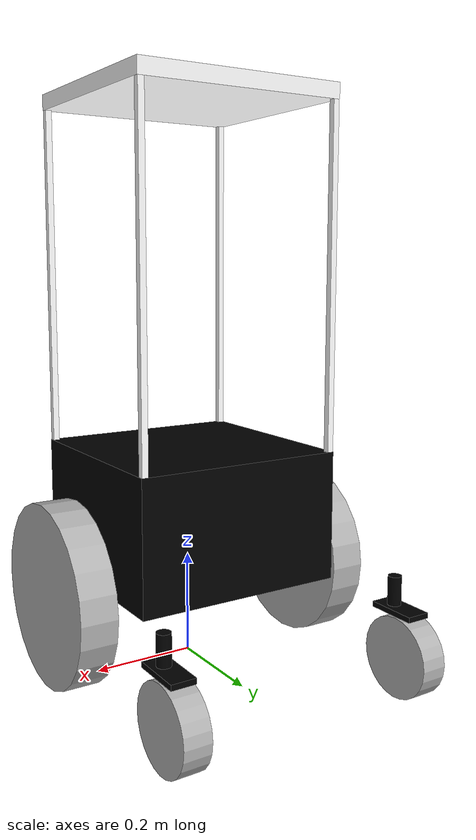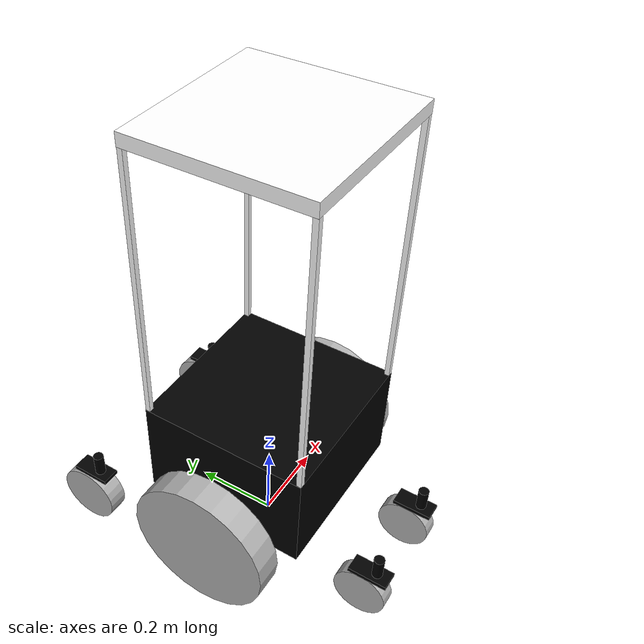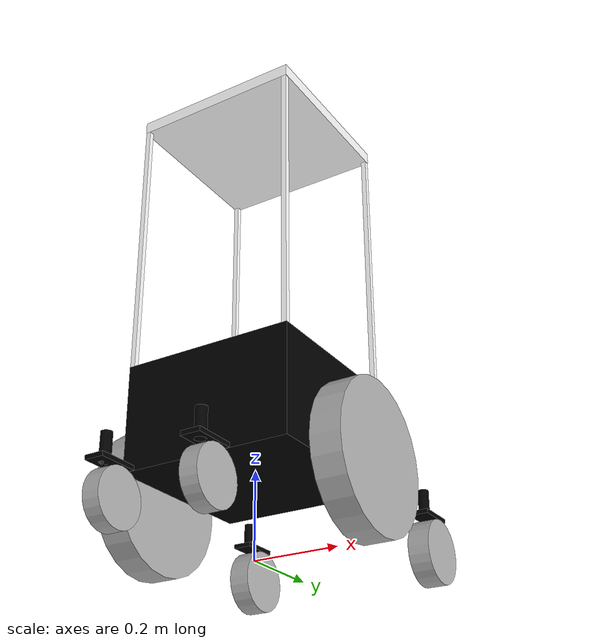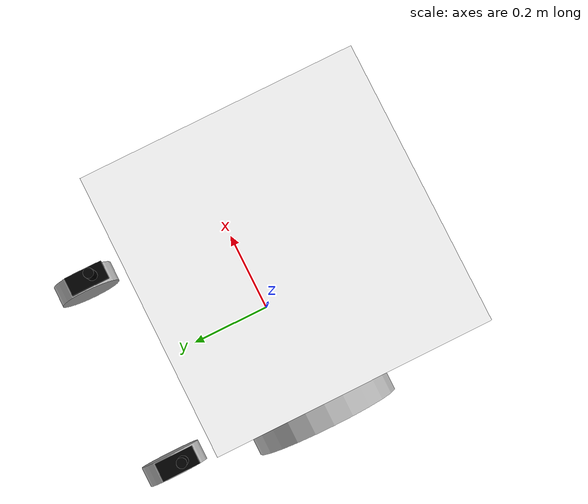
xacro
<?xml version="1.0"?>
<robot name="robot_disco" xmlns:xacro="http://www.ros.org/wiki/xacro" >

<!-- Colors -->

    <material name="black">
        <color rgba="0.0 0.0 0.0 1" />
    </material>

    <material name="grey">
        <color rgba="0.7 0.7 0.7 1" />
    </material>

    <material name="white">
        <color rgba="1.0 1.0 1.0 1" />
    </material>

<!-- Base frame of the robot -->
    <link name="base_footprint" />

    <link name="base_link">
        <visual>
            <geometry>
                <box size="0.41 0.402 0.250" />
            </geometry>
            <origin xyz="0.0 0.0 0.125" rpy="0.0 0.0 0.0" />
            <material name="black" />
        </visual>
    </link>

    <joint name="base_joint" type="fixed">
        <parent link="base_footprint"/>
        <child link="base_link"/>
        <origin xyz="0.0 0.0 0.172" rpy="0.0 0.0 0.0"/>
    </joint>

    <link name="piller_front_left">
        <visual>
            <geometry>
                <box size="0.012 0.012 0.650"/>
            </geometry>
            <origin xyz="0.0 0.0 0.325" rpy="0.0 0.0 0.0"/>
            <material name="white" />
        </visual>
    </link>

    <joint name="base_to_piller_front_left" type="fixed">
        <parent link="base_link"/>
        <child link="piller_front_left"/>
        <origin xyz="0.198 0.195 0.25" rpy="0.0 0.0 0.0"/>
    </joint>

        <link name="piller_front_right">
        <visual>
            <geometry>
                <box size="0.012 0.012 0.650"/>
            </geometry>
            <origin xyz="0.0 0.0 0.325" rpy="0.0 0.0 0.0"/>
            <material name="white" />
        </visual>
    </link>

    <joint name="base_to_piller_front_right" type="fixed">
        <parent link="base_link"/>
        <child link="piller_front_right"/>
        <origin xyz="-0.198 0.195 0.25" rpy="0.0 0.0 0.0"/>
    </joint>

        <link name="piller_back_left">
        <visual>
            <geometry>
                <box size="0.012 0.012 0.650"/>
            </geometry>
            <origin xyz="0.0 0.0 0.325" rpy="0.0 0.0 0.0"/>
            <material name="white" />
        </visual>
    </link>

    <joint name="base_to_piller_back_left" type="fixed">
        <parent link="base_link"/>
        <child link="piller_back_left"/>
        <origin xyz="0.198 -0.195 0.25" rpy="0.0 0.0 0.0"/>
    </joint>

    <link name="piller_back_right">
        <visual>
            <geometry>
                <box size="0.012 0.012 0.650"/>
            </geometry>
            <origin xyz="0.0 0.0 0.325" rpy="0.0 0.0 0.0"/>
            <material name="white" />
        </visual>
    </link>

    <joint name="base_to_piller_back_right" type="fixed">
        <parent link="base_link"/>
        <child link="piller_back_right"/>
        <origin xyz="-0.198 -0.195 0.25" rpy="0.0 0.0 0.0"/>
    </joint>

    <link name="top">
        <visual>
            <geometry>
                <box size="0.41 0.402 0.030"/>
            </geometry>
            <origin xyz="0.0 0.0 0.015" rpy="0.0 0.0 0.0"/>
            <material name="white" />
        </visual>
    </link>

    <joint name="base_to_top" type="fixed">
        <parent link="base_link"/>
        <child link="top"/>
        <origin xyz="0 0 0.9" rpy="0.0 0.0 0.0"/>
    </joint>

<!-- Wheels -->

    <link name="wheel_left">
        <visual>
            <geometry>
                <cylinder radius="0.172" length="0.07"/>
            </geometry>
            <origin xyz="0.0 0.0 0.0" rpy="0 1.57 0.0"/>
            <material name="grey" />
        </visual>
    </link>

    <joint name="base_to_wheel_left" type="continuous">
        <parent link="base_link"/>
        <child link="wheel_left"/>
        <origin xyz="-0.272 0.0 0.0" rpy="0.0 0.0 0.0"/>
        <axis xyz="1.0 0.0 0.0"/>
    </joint>

    <link name="wheel_right">
        <visual>
            <geometry>
                <cylinder radius="0.172" length="0.07"/>
            </geometry>
            <origin xyz="0.0 0.0 0.0" rpy="0 1.57 0.0"/>
            <material name="grey" />
        </visual>
    </link>

    <joint name="base_to_wheel_right" type="continuous">
        <parent link="base_link"/>
        <child link="wheel_right"/>
        <origin xyz="0.272 0.0 0.0" rpy="0.0 0.0 0.0"/>
        <axis xyz="1.0 0.0 0.0"/>
    </joint>

    <!-- Front Right Caster Assembly -->

    <link name="caster_mount_front_right">
        <visual>
            <geometry>
                <cylinder radius="0.0125" length="0.06"/>
            </geometry>
            <origin xyz="0.0 0.0 -0.03" rpy="0.0 0.0 0.0"/>
            <material name="black" />
        </visual>
    </link>

    <joint name="base_to_caster_mount_front_right" type="fixed">
        <parent link="base_link"/>
        <child link="caster_mount_front_right"/>
        <origin xyz="0.241 0.34 0.04" rpy="0.0 0.0 0.0"/>
    </joint>

    <link name="caster_plate_front_right">
        <visual>
            <geometry>
                <box size="0.095 0.045 0.010"/>
            </geometry>
            <origin xyz="0.0 0.015 0.00" rpy="0.0 0.0 1.57"/>
            <material name="black" />
        </visual>
    </link>

    <joint name="caster_mount_to_plate_front_right" type="continuous">
        <parent link="caster_mount_front_right"/>
        <child link="caster_plate_front_right"/>
        <origin xyz="0.0 0.0 -0.06" rpy="0.0 0.0 0.0"/>
        <axis xyz="0.0 0.0 1.0"/>
    </joint>

    <link name="caster_wheel_front_right">
        <visual>
            <geometry>
               <cylinder radius="0.075" length="0.050"/>
            </geometry>
            <origin xyz="0.0 0.0 0.00" rpy="0.0 1.57 0.0"/>
            <material name="grey" />
        </visual>
    </link>

    <joint name="caster_plate_to_wheel_front_right" type="continuous">
        <parent link="caster_plate_front_right"/>
        <child link="caster_wheel_front_right"/>
        <origin xyz="0.0 0.03 -0.081" rpy="0.0 0.0 0.0"/>
        <axis xyz="1.0 0.0 0.0"/>
    </joint>

 <!-- Front Left Caster Assembly -->

    <link name="caster_mount_front_left">
        <visual>
            <geometry>
                <cylinder radius="0.0125" length="0.06"/>
            </geometry>
            <origin xyz="0.0 0.0 -0.03" rpy="0.0 0.0 0.0"/>
            <material name="black" />
        </visual>
    </link>

    <joint name="base_to_caster_mount_front_left" type="fixed">
        <parent link="base_link"/>
        <child link="caster_mount_front_left"/>
        <origin xyz="-0.241 0.34 0.04" rpy="0.0 0.0 0.0"/>
    </joint>

    <link name="caster_plate_front_left">
        <visual>
            <geometry>
                <box size="0.095 0.045 0.010"/>
            </geometry>
            <origin xyz="0.0 0.015 0.00" rpy="0.0 0.0 1.57"/>
            <material name="black" />
        </visual>
    </link>

    <joint name="caster_mount_to_plate_front_left" type="continuous">
        <parent link="caster_mount_front_left"/>
        <child link="caster_plate_front_left"/>
        <origin xyz="0.0 0.0 -0.06" rpy="0.0 0.0 0.0"/>
        <axis xyz="0.0 0.0 1.0"/>
    </joint>

    <link name="caster_wheel_front_left">
        <visual>
            <geometry>
               <cylinder radius="0.075" length="0.050"/>
            </geometry>
            <origin xyz="0.0 0.0 0.00" rpy="0.0 1.57 0.0"/>
            <material name="grey" />
        </visual>
    </link>

    <joint name="caster_plate_to_wheel_front_left" type="continuous">
        <parent link="caster_plate_front_left"/>
        <child link="caster_wheel_front_left"/>
        <origin xyz="0.0 0.03 -0.081" rpy="0.0 0.0 0.0"/>
        <axis xyz="1.0 0.0 0.0"/>
    </joint>

 <!-- Back Left Caster Assembly -->

    <link name="caster_mount_back_left">
        <visual>
            <geometry>
                <cylinder radius="0.0125" length="0.065"/>
            </geometry>
            <origin xyz="0.0 0.0 -0.0325" rpy="0.0 0.0 0.0"/>
            <material name="black" />
        </visual>
    </link>

    <joint name="base_to_caster_mount_back_left" type="fixed">
        <parent link="base_link"/>
        <child link="caster_mount_back_left"/>
        <origin xyz="0.115 -0.361 0.018" rpy="0.0 0.0 0.0"/>
    </joint>

    <link name="caster_plate_back_left">
        <visual>
            <geometry>
                <box size="0.095 0.045 0.010"/>
            </geometry>
            <origin xyz="0.0 0.015 0.00" rpy="0.0 0.0 1.57"/>
            <material name="black" />
        </visual>
    </link>

    <joint name="caster_mount_to_plate_back_left" type="continuous">
        <parent link="caster_mount_back_left"/>
        <child link="caster_plate_back_left"/>
        <origin xyz="0.0 0.0 -0.06" rpy="0.0 0.0 0.0"/>
        <axis xyz="0.0 0.0 1.0"/>
    </joint>

    <link name="caster_wheel_back_left">
        <visual>
            <geometry>
               <cylinder radius="0.065" length="0.040"/>
            </geometry>
            <origin xyz="0.0 0.0 0.00" rpy="0.0 1.57 0.0"/>
            <material name="grey" />
        </visual>
    </link>

    <joint name="caster_plate_to_wheel_back_left" type="continuous">
        <parent link="caster_plate_back_left"/>
        <child link="caster_wheel_back_left"/>
        <origin xyz="0.0 0.03 -0.071" rpy="0.0 0.0 0.0"/>
        <axis xyz="1.0 0.0 0.0"/>
    </joint>

 <!-- Back Right Caster Assembly -->

    <link name="caster_mount_back_right">
        <visual>
            <geometry>
                <cylinder radius="0.0125" length="0.065"/>
            </geometry>
            <origin xyz="0.0 0.0 -0.0325" rpy="0.0 0.0 0.0"/>
            <material name="black" />
        </visual>
    </link>

    <joint name="base_to_caster_mount_back_right" type="fixed">
        <parent link="base_link"/>
        <child link="caster_mount_back_right"/>
        <origin xyz="-0.115 -0.361 0.018" rpy="0.0 0.0 0.0"/>
    </joint>

    <link name="caster_plate_back_right">
        <visual>
            <geometry>
                <box size="0.095 0.045 0.010"/>
            </geometry>
            <origin xyz="0.0 0.015 0.00" rpy="0.0 0.0 1.57"/>
            <material name="black" />
        </visual>
    </link>

    <joint name="caster_mount_to_plate_back_right" type="continuous">
        <parent link="caster_mount_back_right"/>
        <child link="caster_plate_back_right"/>
        <origin xyz="0.0 0.0 -0.06" rpy="0.0 0.0 0.0"/>
        <axis xyz="0.0 0.0 1.0"/>
    </joint>

    <link name="caster_wheel_back_right">
        <visual>
            <geometry>
               <cylinder radius="0.065" length="0.040"/>
            </geometry>
            <origin xyz="0.0 0.0 0.00" rpy="0.0 1.57 0.0"/>
            <material name="grey" />
        </visual>
    </link>

    <joint name="caster_plate_to_wheel_back_right" type="continuous">
        <parent link="caster_plate_back_right"/>
        <child link="caster_wheel_back_right"/>
        <origin xyz="0.0 0.03 -0.071" rpy="0.0 0.0 0.0"/>
        <axis xyz="1.0 0.0 0.0"/>
    </joint>
</robot>
